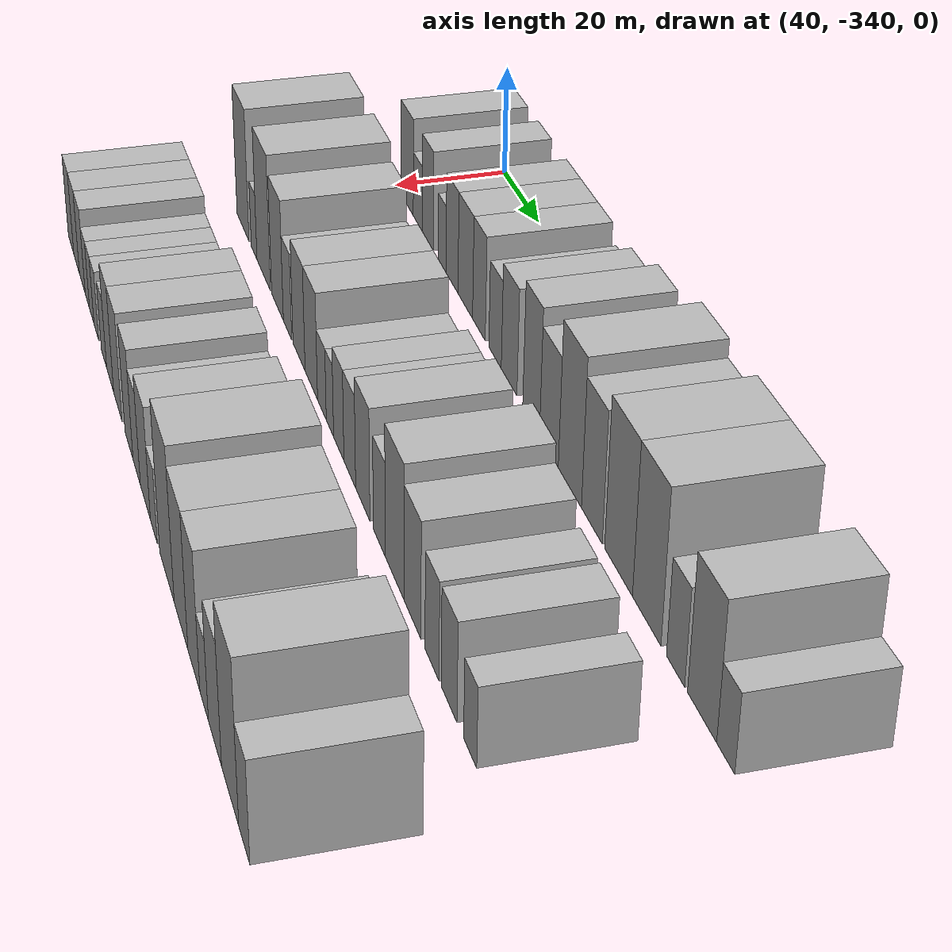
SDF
<sdf version="1.6">
 <world name="default">
  <model name="building_1">
   <static>1</static>
   <pose>50.0000 -331.8723 0 0.000000 0.000000 0.000000</pose>
   <link name="link">
    <pose>0 0 9.00 0 0 0</pose>
    <collision name="collision"><geometry><box><size>20.0000 8.2555 18.0000</size></box></geometry></collision>
    <visual name="visual">
     <cast_shadows>0</cast_shadows>
     <geometry><box><size>20.0000 8.2555 18.0000</size></box></geometry>
     <material>
      <script>
       <uri>model://HANNAS_wall/materials/scripts</uri>
       <uri>model://HANNAS_wall/materials/textures</uri>
       <name>vrc/HANNAS_wall</name>
      </script>
     </material>
    </visual>
   </link>
  </model>
  <model name="building_2">
   <static>1</static>
   <pose>50.0000 -324.7991 0 0.000000 0.000000 0.000000</pose>
   <link name="link">
    <pose>0 0 6.00 0 0 0</pose>
    <collision name="collision"><geometry><box><size>20.0000 5.8909 12.0000</size></box></geometry></collision>
    <visual name="visual">
     <cast_shadows>0</cast_shadows>
     <geometry><box><size>20.0000 5.8909 12.0000</size></box></geometry>
     <material>
      <script>
       <uri>model://HANNAS_wall/materials/scripts</uri>
       <uri>model://HANNAS_wall/materials/textures</uri>
       <name>vrc/HANNAS_wall</name>
      </script>
     </material>
    </visual>
   </link>
  </model>
  <model name="building_3">
   <static>1</static>
   <pose>50.0000 -318.1477 0 0.000000 0.000000 0.000000</pose>
   <link name="link">
    <pose>0 0 9.00 0 0 0</pose>
    <collision name="collision"><geometry><box><size>20.0000 7.4118 18.0000</size></box></geometry></collision>
    <visual name="visual">
     <cast_shadows>0</cast_shadows>
     <geometry><box><size>20.0000 7.4118 18.0000</size></box></geometry>
     <material>
      <script>
       <uri>model://HANNAS_wall/materials/scripts</uri>
       <uri>model://HANNAS_wall/materials/textures</uri>
       <name>vrc/HANNAS_wall</name>
      </script>
     </material>
    </visual>
   </link>
  </model>
  <model name="building_4">
   <static>1</static>
   <pose>50.0000 -308.9618 0 0.000000 0.000000 0.000000</pose>
   <link name="link">
    <pose>0 0 6.00 0 0 0</pose>
    <collision name="collision"><geometry><box><size>20.0000 4.9599 12.0000</size></box></geometry></collision>
    <visual name="visual">
     <cast_shadows>0</cast_shadows>
     <geometry><box><size>20.0000 4.9599 12.0000</size></box></geometry>
     <material>
      <script>
       <uri>model://HANNAS_wall/materials/scripts</uri>
       <uri>model://HANNAS_wall/materials/textures</uri>
       <name>vrc/HANNAS_wall</name>
      </script>
     </material>
    </visual>
   </link>
  </model>
  <model name="building_5">
   <static>1</static>
   <pose>50.0000 -302.8142 0 0.000000 0.000000 0.000000</pose>
   <link name="link">
    <pose>0 0 9.00 0 0 0</pose>
    <collision name="collision"><geometry><box><size>20.0000 7.3353 18.0000</size></box></geometry></collision>
    <visual name="visual">
     <cast_shadows>0</cast_shadows>
     <geometry><box><size>20.0000 7.3353 18.0000</size></box></geometry>
     <material>
      <script>
       <uri>model://HANNAS_wall/materials/scripts</uri>
       <uri>model://HANNAS_wall/materials/textures</uri>
       <name>vrc/HANNAS_wall</name>
      </script>
     </material>
    </visual>
   </link>
  </model>
  <model name="building_6">
   <static>1</static>
   <pose>50.0000 -294.8184 0 0.000000 0.000000 0.000000</pose>
   <link name="link">
    <pose>0 0 9.00 0 0 0</pose>
    <collision name="collision"><geometry><box><size>20.0000 8.6562 18.0000</size></box></geometry></collision>
    <visual name="visual">
     <cast_shadows>0</cast_shadows>
     <geometry><box><size>20.0000 8.6562 18.0000</size></box></geometry>
     <material>
      <script>
       <uri>model://HANNAS_wall/materials/scripts</uri>
       <uri>model://HANNAS_wall/materials/textures</uri>
       <name>vrc/HANNAS_wall</name>
      </script>
     </material>
    </visual>
   </link>
  </model>
  <model name="building_7">
   <static>1</static>
   <pose>50.0000 -286.8759 0 0.000000 0.000000 0.000000</pose>
   <link name="link">
    <pose>0 0 9.00 0 0 0</pose>
    <collision name="collision"><geometry><box><size>20.0000 7.2289 18.0000</size></box></geometry></collision>
    <visual name="visual">
     <cast_shadows>0</cast_shadows>
     <geometry><box><size>20.0000 7.2289 18.0000</size></box></geometry>
     <material>
      <script>
       <uri>model://HANNAS_wall/materials/scripts</uri>
       <uri>model://HANNAS_wall/materials/textures</uri>
       <name>vrc/HANNAS_wall</name>
      </script>
     </material>
    </visual>
   </link>
  </model>
  <model name="building_8">
   <static>1</static>
   <pose>50.0000 -277.8663 0 0.000000 0.000000 0.000000</pose>
   <link name="link">
    <pose>0 0 7.50 0 0 0</pose>
    <collision name="collision"><geometry><box><size>20.0000 6.7901 15.0000</size></box></geometry></collision>
    <visual name="visual">
     <cast_shadows>0</cast_shadows>
     <geometry><box><size>20.0000 6.7901 15.0000</size></box></geometry>
     <material>
      <script>
       <uri>model://HANNAS_wall/materials/scripts</uri>
       <uri>model://HANNAS_wall/materials/textures</uri>
       <name>vrc/HANNAS_wall</name>
      </script>
     </material>
    </visual>
   </link>
  </model>
  <model name="building_9">
   <static>1</static>
   <pose>50.0000 -270.3307 0 0.000000 0.000000 0.000000</pose>
   <link name="link">
    <pose>0 0 9.00 0 0 0</pose>
    <collision name="collision"><geometry><box><size>20.0000 8.2811 18.0000</size></box></geometry></collision>
    <visual name="visual">
     <cast_shadows>0</cast_shadows>
     <geometry><box><size>20.0000 8.2811 18.0000</size></box></geometry>
     <material>
      <script>
       <uri>model://HANNAS_wall/materials/scripts</uri>
       <uri>model://HANNAS_wall/materials/textures</uri>
       <name>vrc/HANNAS_wall</name>
      </script>
     </material>
    </visual>
   </link>
  </model>
  <model name="building_10">
   <static>1</static>
   <pose>50.0000 -258.9902 0 0.000000 0.000000 0.000000</pose>
   <link name="link">
    <pose>0 0 10.50 0 0 0</pose>
    <collision name="collision"><geometry><box><size>20.0000 8.4001 21.0000</size></box></geometry></collision>
    <visual name="visual">
     <cast_shadows>0</cast_shadows>
     <geometry><box><size>20.0000 8.4001 21.0000</size></box></geometry>
     <material>
      <script>
       <uri>model://HANNAS_wall/materials/scripts</uri>
       <uri>model://HANNAS_wall/materials/textures</uri>
       <name>vrc/HANNAS_wall</name>
      </script>
     </material>
    </visual>
   </link>
  </model>
  <model name="building_11">
   <static>1</static>
   <pose>50.0000 -250.2972 0 0.000000 0.000000 0.000000</pose>
   <link name="link">
    <pose>0 0 9.00 0 0 0</pose>
    <collision name="collision"><geometry><box><size>20.0000 8.9858 18.0000</size></box></geometry></collision>
    <visual name="visual">
     <cast_shadows>0</cast_shadows>
     <geometry><box><size>20.0000 8.9858 18.0000</size></box></geometry>
     <material>
      <script>
       <uri>model://HANNAS_wall/materials/scripts</uri>
       <uri>model://HANNAS_wall/materials/textures</uri>
       <name>vrc/HANNAS_wall</name>
      </script>
     </material>
    </visual>
   </link>
  </model>
  <model name="building_12">
   <static>1</static>
   <pose>50.0000 -240.5236 0 0.000000 0.000000 0.000000</pose>
   <link name="link">
    <pose>0 0 12.00 0 0 0</pose>
    <collision name="collision"><geometry><box><size>20.0000 10.5614 24.0000</size></box></geometry></collision>
    <visual name="visual">
     <cast_shadows>0</cast_shadows>
     <geometry><box><size>20.0000 10.5614 24.0000</size></box></geometry>
     <material>
      <script>
       <uri>model://HANNAS_wall/materials/scripts</uri>
       <uri>model://HANNAS_wall/materials/textures</uri>
       <name>vrc/HANNAS_wall</name>
      </script>
     </material>
    </visual>
   </link>
  </model>
  <model name="building_13">
   <static>1</static>
   <pose>50.0000 -230.7263 0 0.000000 0.000000 0.000000</pose>
   <link name="link">
    <pose>0 0 10.50 0 0 0</pose>
    <collision name="collision"><geometry><box><size>20.0000 9.0333 21.0000</size></box></geometry></collision>
    <visual name="visual">
     <cast_shadows>0</cast_shadows>
     <geometry><box><size>20.0000 9.0333 21.0000</size></box></geometry>
     <material>
      <script>
       <uri>model://HANNAS_wall/materials/scripts</uri>
       <uri>model://HANNAS_wall/materials/textures</uri>
       <name>vrc/HANNAS_wall</name>
      </script>
     </material>
    </visual>
   </link>
  </model>
  <model name="building_14">
   <static>1</static>
   <pose>50.0000 -219.5225 0 0.000000 0.000000 0.000000</pose>
   <link name="link">
    <pose>0 0 12.00 0 0 0</pose>
    <collision name="collision"><geometry><box><size>20.0000 11.3742 24.0000</size></box></geometry></collision>
    <visual name="visual">
     <cast_shadows>0</cast_shadows>
     <geometry><box><size>20.0000 11.3742 24.0000</size></box></geometry>
     <material>
      <script>
       <uri>model://HANNAS_wall/materials/scripts</uri>
       <uri>model://HANNAS_wall/materials/textures</uri>
       <name>vrc/HANNAS_wall</name>
      </script>
     </material>
    </visual>
   </link>
  </model>
  <model name="building_15">
   <static>1</static>
   <pose>50.0000 -208.3464 0 0.000000 0.000000 0.000000</pose>
   <link name="link">
    <pose>0 0 12.00 0 0 0</pose>
    <collision name="collision"><geometry><box><size>20.0000 10.9780 24.0000</size></box></geometry></collision>
    <visual name="visual">
     <cast_shadows>0</cast_shadows>
     <geometry><box><size>20.0000 10.9780 24.0000</size></box></geometry>
     <material>
      <script>
       <uri>model://HANNAS_wall/materials/scripts</uri>
       <uri>model://HANNAS_wall/materials/textures</uri>
       <name>vrc/HANNAS_wall</name>
      </script>
     </material>
    </visual>
   </link>
  </model>
  <model name="building_16">
   <static>1</static>
   <pose>50.0000 -197.5580 0 0.000000 0.000000 0.000000</pose>
   <link name="link">
    <pose>0 0 7.50 0 0 0</pose>
    <collision name="collision"><geometry><box><size>20.0000 6.5987 15.0000</size></box></geometry></collision>
    <visual name="visual">
     <cast_shadows>0</cast_shadows>
     <geometry><box><size>20.0000 6.5987 15.0000</size></box></geometry>
     <material>
      <script>
       <uri>model://HANNAS_wall/materials/scripts</uri>
       <uri>model://HANNAS_wall/materials/textures</uri>
       <name>vrc/HANNAS_wall</name>
      </script>
     </material>
    </visual>
   </link>
  </model>
  <model name="building_17">
   <static>1</static>
   <pose>50.0000 -188.2668 0 0.000000 0.000000 0.000000</pose>
   <link name="link">
    <pose>0 0 10.50 0 0 0</pose>
    <collision name="collision"><geometry><box><size>20.0000 9.9837 21.0000</size></box></geometry></collision>
    <visual name="visual">
     <cast_shadows>0</cast_shadows>
     <geometry><box><size>20.0000 9.9837 21.0000</size></box></geometry>
     <material>
      <script>
       <uri>model://HANNAS_wall/materials/scripts</uri>
       <uri>model://HANNAS_wall/materials/textures</uri>
       <name>vrc/HANNAS_wall</name>
      </script>
     </material>
    </visual>
   </link>
  </model>
  <model name="building_18">
   <static>1</static>
   <pose>50.0000 -180.3005 0 0.000000 0.000000 0.000000</pose>
   <link name="link">
    <pose>0 0 6.00 0 0 0</pose>
    <collision name="collision"><geometry><box><size>20.0000 5.9488 12.0000</size></box></geometry></collision>
    <visual name="visual">
     <cast_shadows>0</cast_shadows>
     <geometry><box><size>20.0000 5.9488 12.0000</size></box></geometry>
     <material>
      <script>
       <uri>model://HANNAS_wall/materials/scripts</uri>
       <uri>model://HANNAS_wall/materials/textures</uri>
       <name>vrc/HANNAS_wall</name>
      </script>
     </material>
    </visual>
   </link>
  </model>
  <model name="building_75">
   <static>1</static>
   <pose>79.0000 -330.7034 0 0.000000 0.000000 0.000000</pose>
   <link name="link">
    <pose>0 0 12.00 0 0 0</pose>
    <collision name="collision"><geometry><box><size>20.0000 10.5932 24.0000</size></box></geometry></collision>
    <visual name="visual">
     <cast_shadows>0</cast_shadows>
     <geometry><box><size>20.0000 10.5932 24.0000</size></box></geometry>
     <material>
      <script>
       <uri>model://HANNAS_wall/materials/scripts</uri>
       <uri>model://HANNAS_wall/materials/textures</uri>
       <name>vrc/HANNAS_wall</name>
      </script>
     </material>
    </visual>
   </link>
  </model>
  <model name="building_76">
   <static>1</static>
   <pose>79.0000 -320.9706 0 0.000000 0.000000 0.000000</pose>
   <link name="link">
    <pose>0 0 6.00 0 0 0</pose>
    <collision name="collision"><geometry><box><size>20.0000 4.8725 12.0000</size></box></geometry></collision>
    <visual name="visual">
     <cast_shadows>0</cast_shadows>
     <geometry><box><size>20.0000 4.8725 12.0000</size></box></geometry>
     <material>
      <script>
       <uri>model://HANNAS_wall/materials/scripts</uri>
       <uri>model://HANNAS_wall/materials/textures</uri>
       <name>vrc/HANNAS_wall</name>
      </script>
     </material>
    </visual>
   </link>
  </model>
  <model name="building_77">
   <static>1</static>
   <pose>79.0000 -312.9926 0 0.000000 0.000000 0.000000</pose>
   <link name="link">
    <pose>0 0 12.00 0 0 0</pose>
    <collision name="collision"><geometry><box><size>20.0000 11.0833 24.0000</size></box></geometry></collision>
    <visual name="visual">
     <cast_shadows>0</cast_shadows>
     <geometry><box><size>20.0000 11.0833 24.0000</size></box></geometry>
     <material>
      <script>
       <uri>model://HANNAS_wall/materials/scripts</uri>
       <uri>model://HANNAS_wall/materials/textures</uri>
       <name>vrc/HANNAS_wall</name>
      </script>
     </material>
    </visual>
   </link>
  </model>
  <model name="building_78">
   <static>1</static>
   <pose>79.0000 -301.8425 0 0.000000 0.000000 0.000000</pose>
   <link name="link">
    <pose>0 0 10.50 0 0 0</pose>
    <collision name="collision"><geometry><box><size>20.0000 9.2170 21.0000</size></box></geometry></collision>
    <visual name="visual">
     <cast_shadows>0</cast_shadows>
     <geometry><box><size>20.0000 9.2170 21.0000</size></box></geometry>
     <material>
      <script>
       <uri>model://HANNAS_wall/materials/scripts</uri>
       <uri>model://HANNAS_wall/materials/textures</uri>
       <name>vrc/HANNAS_wall</name>
      </script>
     </material>
    </visual>
   </link>
  </model>
  <model name="building_79">
   <static>1</static>
   <pose>79.0000 -294.0895 0 0.000000 0.000000 0.000000</pose>
   <link name="link">
    <pose>0 0 7.50 0 0 0</pose>
    <collision name="collision"><geometry><box><size>20.0000 6.2889 15.0000</size></box></geometry></collision>
    <visual name="visual">
     <cast_shadows>0</cast_shadows>
     <geometry><box><size>20.0000 6.2889 15.0000</size></box></geometry>
     <material>
      <script>
       <uri>model://HANNAS_wall/materials/scripts</uri>
       <uri>model://HANNAS_wall/materials/textures</uri>
       <name>vrc/HANNAS_wall</name>
      </script>
     </material>
    </visual>
   </link>
  </model>
  <model name="building_80">
   <static>1</static>
   <pose>79.0000 -285.5408 0 0.000000 0.000000 0.000000</pose>
   <link name="link">
    <pose>0 0 9.00 0 0 0</pose>
    <collision name="collision"><geometry><box><size>20.0000 8.8086 18.0000</size></box></geometry></collision>
    <visual name="visual">
     <cast_shadows>0</cast_shadows>
     <geometry><box><size>20.0000 8.8086 18.0000</size></box></geometry>
     <material>
      <script>
       <uri>model://HANNAS_wall/materials/scripts</uri>
       <uri>model://HANNAS_wall/materials/textures</uri>
       <name>vrc/HANNAS_wall</name>
      </script>
     </material>
    </visual>
   </link>
  </model>
  <model name="building_81">
   <static>1</static>
   <pose>79.0000 -276.7729 0 0.000000 0.000000 0.000000</pose>
   <link name="link">
    <pose>0 0 9.00 0 0 0</pose>
    <collision name="collision"><geometry><box><size>20.0000 8.7271 18.0000</size></box></geometry></collision>
    <visual name="visual">
     <cast_shadows>0</cast_shadows>
     <geometry><box><size>20.0000 8.7271 18.0000</size></box></geometry>
     <material>
      <script>
       <uri>model://HANNAS_wall/materials/scripts</uri>
       <uri>model://HANNAS_wall/materials/textures</uri>
       <name>vrc/HANNAS_wall</name>
      </script>
     </material>
    </visual>
   </link>
  </model>
  <model name="building_82">
   <static>1</static>
   <pose>79.0000 -269.4587 0 0.000000 0.000000 0.000000</pose>
   <link name="link">
    <pose>0 0 6.00 0 0 0</pose>
    <collision name="collision"><geometry><box><size>20.0000 5.9014 12.0000</size></box></geometry></collision>
    <visual name="visual">
     <cast_shadows>0</cast_shadows>
     <geometry><box><size>20.0000 5.9014 12.0000</size></box></geometry>
     <material>
      <script>
       <uri>model://HANNAS_wall/materials/scripts</uri>
       <uri>model://HANNAS_wall/materials/textures</uri>
       <name>vrc/HANNAS_wall</name>
      </script>
     </material>
    </visual>
   </link>
  </model>
  <model name="building_83">
   <static>1</static>
   <pose>79.0000 -264.1017 0 0.000000 0.000000 0.000000</pose>
   <link name="link">
    <pose>0 0 6.00 0 0 0</pose>
    <collision name="collision"><geometry><box><size>20.0000 4.8125 12.0000</size></box></geometry></collision>
    <visual name="visual">
     <cast_shadows>0</cast_shadows>
     <geometry><box><size>20.0000 4.8125 12.0000</size></box></geometry>
     <material>
      <script>
       <uri>model://HANNAS_wall/materials/scripts</uri>
       <uri>model://HANNAS_wall/materials/textures</uri>
       <name>vrc/HANNAS_wall</name>
      </script>
     </material>
    </visual>
   </link>
  </model>
  <model name="building_84">
   <static>1</static>
   <pose>79.0000 -258.3861 0 0.000000 0.000000 0.000000</pose>
   <link name="link">
    <pose>0 0 7.50 0 0 0</pose>
    <collision name="collision"><geometry><box><size>20.0000 6.6188 15.0000</size></box></geometry></collision>
    <visual name="visual">
     <cast_shadows>0</cast_shadows>
     <geometry><box><size>20.0000 6.6188 15.0000</size></box></geometry>
     <material>
      <script>
       <uri>model://HANNAS_wall/materials/scripts</uri>
       <uri>model://HANNAS_wall/materials/textures</uri>
       <name>vrc/HANNAS_wall</name>
      </script>
     </material>
    </visual>
   </link>
  </model>
  <model name="building_85">
   <static>1</static>
   <pose>79.0000 -251.4478 0 0.000000 0.000000 0.000000</pose>
   <link name="link">
    <pose>0 0 7.50 0 0 0</pose>
    <collision name="collision"><geometry><box><size>20.0000 7.2578 15.0000</size></box></geometry></collision>
    <visual name="visual">
     <cast_shadows>0</cast_shadows>
     <geometry><box><size>20.0000 7.2578 15.0000</size></box></geometry>
     <material>
      <script>
       <uri>model://HANNAS_wall/materials/scripts</uri>
       <uri>model://HANNAS_wall/materials/textures</uri>
       <name>vrc/HANNAS_wall</name>
      </script>
     </material>
    </visual>
   </link>
  </model>
  <model name="building_86">
   <static>1</static>
   <pose>79.0000 -243.5681 0 0.000000 0.000000 0.000000</pose>
   <link name="link">
    <pose>0 0 9.00 0 0 0</pose>
    <collision name="collision"><geometry><box><size>20.0000 8.5016 18.0000</size></box></geometry></collision>
    <visual name="visual">
     <cast_shadows>0</cast_shadows>
     <geometry><box><size>20.0000 8.5016 18.0000</size></box></geometry>
     <material>
      <script>
       <uri>model://HANNAS_wall/materials/scripts</uri>
       <uri>model://HANNAS_wall/materials/textures</uri>
       <name>vrc/HANNAS_wall</name>
      </script>
     </material>
    </visual>
   </link>
  </model>
  <model name="building_87">
   <static>1</static>
   <pose>79.0000 -233.9221 0 0.000000 0.000000 0.000000</pose>
   <link name="link">
    <pose>0 0 7.50 0 0 0</pose>
    <collision name="collision"><geometry><box><size>20.0000 6.7903 15.0000</size></box></geometry></collision>
    <visual name="visual">
     <cast_shadows>0</cast_shadows>
     <geometry><box><size>20.0000 6.7903 15.0000</size></box></geometry>
     <material>
      <script>
       <uri>model://HANNAS_wall/materials/scripts</uri>
       <uri>model://HANNAS_wall/materials/textures</uri>
       <name>vrc/HANNAS_wall</name>
      </script>
     </material>
    </visual>
   </link>
  </model>
  <model name="building_88">
   <static>1</static>
   <pose>79.0000 -225.4877 0 0.000000 0.000000 0.000000</pose>
   <link name="link">
    <pose>0 0 10.50 0 0 0</pose>
    <collision name="collision"><geometry><box><size>20.0000 10.0786 21.0000</size></box></geometry></collision>
    <visual name="visual">
     <cast_shadows>0</cast_shadows>
     <geometry><box><size>20.0000 10.0786 21.0000</size></box></geometry>
     <material>
      <script>
       <uri>model://HANNAS_wall/materials/scripts</uri>
       <uri>model://HANNAS_wall/materials/textures</uri>
       <name>vrc/HANNAS_wall</name>
      </script>
     </material>
    </visual>
   </link>
  </model>
  <model name="building_89">
   <static>1</static>
   <pose>79.0000 -216.1134 0 0.000000 0.000000 0.000000</pose>
   <link name="link">
    <pose>0 0 9.00 0 0 0</pose>
    <collision name="collision"><geometry><box><size>20.0000 8.6700 18.0000</size></box></geometry></collision>
    <visual name="visual">
     <cast_shadows>0</cast_shadows>
     <geometry><box><size>20.0000 8.6700 18.0000</size></box></geometry>
     <material>
      <script>
       <uri>model://HANNAS_wall/materials/scripts</uri>
       <uri>model://HANNAS_wall/materials/textures</uri>
       <name>vrc/HANNAS_wall</name>
      </script>
     </material>
    </visual>
   </link>
  </model>
  <model name="building_90">
   <static>1</static>
   <pose>79.0000 -206.3821 0 0.000000 0.000000 0.000000</pose>
   <link name="link">
    <pose>0 0 7.50 0 0 0</pose>
    <collision name="collision"><geometry><box><size>20.0000 6.7925 15.0000</size></box></geometry></collision>
    <visual name="visual">
     <cast_shadows>0</cast_shadows>
     <geometry><box><size>20.0000 6.7925 15.0000</size></box></geometry>
     <material>
      <script>
       <uri>model://HANNAS_wall/materials/scripts</uri>
       <uri>model://HANNAS_wall/materials/textures</uri>
       <name>vrc/HANNAS_wall</name>
      </script>
     </material>
    </visual>
   </link>
  </model>
  <model name="building_91">
   <static>1</static>
   <pose>79.0000 -198.3177 0 0.000000 0.000000 0.000000</pose>
   <link name="link">
    <pose>0 0 7.50 0 0 0</pose>
    <collision name="collision"><geometry><box><size>20.0000 7.3364 15.0000</size></box></geometry></collision>
    <visual name="visual">
     <cast_shadows>0</cast_shadows>
     <geometry><box><size>20.0000 7.3364 15.0000</size></box></geometry>
     <material>
      <script>
       <uri>model://HANNAS_wall/materials/scripts</uri>
       <uri>model://HANNAS_wall/materials/textures</uri>
       <name>vrc/HANNAS_wall</name>
      </script>
     </material>
    </visual>
   </link>
  </model>
  <model name="building_92">
   <static>1</static>
   <pose>79.0000 -188.7848 0 0.000000 0.000000 0.000000</pose>
   <link name="link">
    <pose>0 0 6.00 0 0 0</pose>
    <collision name="collision"><geometry><box><size>20.0000 5.7293 12.0000</size></box></geometry></collision>
    <visual name="visual">
     <cast_shadows>0</cast_shadows>
     <geometry><box><size>20.0000 5.7293 12.0000</size></box></geometry>
     <material>
      <script>
       <uri>model://HANNAS_wall/materials/scripts</uri>
       <uri>model://HANNAS_wall/materials/textures</uri>
       <name>vrc/HANNAS_wall</name>
      </script>
     </material>
    </visual>
   </link>
  </model>
  <model name="building_151">
   <static>1</static>
   <pose>108.0000 -331.5030 0 0.000000 0.000000 0.000000</pose>
   <link name="link">
    <pose>0 0 7.50 0 0 0</pose>
    <collision name="collision"><geometry><box><size>20.0000 6.9940 15.0000</size></box></geometry></collision>
    <visual name="visual">
     <cast_shadows>0</cast_shadows>
     <geometry><box><size>20.0000 6.9940 15.0000</size></box></geometry>
     <material>
      <script>
       <uri>model://HANNAS_wall/materials/scripts</uri>
       <uri>model://HANNAS_wall/materials/textures</uri>
       <name>vrc/HANNAS_wall</name>
      </script>
     </material>
    </visual>
   </link>
  </model>
  <model name="building_152">
   <static>1</static>
   <pose>108.0000 -324.4294 0 0.000000 0.000000 0.000000</pose>
   <link name="link">
    <pose>0 0 7.50 0 0 0</pose>
    <collision name="collision"><geometry><box><size>20.0000 7.1532 15.0000</size></box></geometry></collision>
    <visual name="visual">
     <cast_shadows>0</cast_shadows>
     <geometry><box><size>20.0000 7.1532 15.0000</size></box></geometry>
     <material>
      <script>
       <uri>model://HANNAS_wall/materials/scripts</uri>
       <uri>model://HANNAS_wall/materials/textures</uri>
       <name>vrc/HANNAS_wall</name>
      </script>
     </material>
    </visual>
   </link>
  </model>
  <model name="building_153">
   <static>1</static>
   <pose>108.0000 -317.3427 0 0.000000 0.000000 0.000000</pose>
   <link name="link">
    <pose>0 0 7.50 0 0 0</pose>
    <collision name="collision"><geometry><box><size>20.0000 7.0202 15.0000</size></box></geometry></collision>
    <visual name="visual">
     <cast_shadows>0</cast_shadows>
     <geometry><box><size>20.0000 7.0202 15.0000</size></box></geometry>
     <material>
      <script>
       <uri>model://HANNAS_wall/materials/scripts</uri>
       <uri>model://HANNAS_wall/materials/textures</uri>
       <name>vrc/HANNAS_wall</name>
      </script>
     </material>
    </visual>
   </link>
  </model>
  <model name="building_154">
   <static>1</static>
   <pose>108.0000 -311.2737 0 0.000000 0.000000 0.000000</pose>
   <link name="link">
    <pose>0 0 6.00 0 0 0</pose>
    <collision name="collision"><geometry><box><size>20.0000 5.1178 12.0000</size></box></geometry></collision>
    <visual name="visual">
     <cast_shadows>0</cast_shadows>
     <geometry><box><size>20.0000 5.1178 12.0000</size></box></geometry>
     <material>
      <script>
       <uri>model://HANNAS_wall/materials/scripts</uri>
       <uri>model://HANNAS_wall/materials/textures</uri>
       <name>vrc/HANNAS_wall</name>
      </script>
     </material>
    </visual>
   </link>
  </model>
  <model name="building_155">
   <static>1</static>
   <pose>108.0000 -306.1029 0 0.000000 0.000000 0.000000</pose>
   <link name="link">
    <pose>0 0 6.00 0 0 0</pose>
    <collision name="collision"><geometry><box><size>20.0000 5.2237 12.0000</size></box></geometry></collision>
    <visual name="visual">
     <cast_shadows>0</cast_shadows>
     <geometry><box><size>20.0000 5.2237 12.0000</size></box></geometry>
     <material>
      <script>
       <uri>model://HANNAS_wall/materials/scripts</uri>
       <uri>model://HANNAS_wall/materials/textures</uri>
       <name>vrc/HANNAS_wall</name>
      </script>
     </material>
    </visual>
   </link>
  </model>
  <model name="building_156">
   <static>1</static>
   <pose>108.0000 -300.8334 0 0.000000 0.000000 0.000000</pose>
   <link name="link">
    <pose>0 0 6.00 0 0 0</pose>
    <collision name="collision"><geometry><box><size>20.0000 5.3154 12.0000</size></box></geometry></collision>
    <visual name="visual">
     <cast_shadows>0</cast_shadows>
     <geometry><box><size>20.0000 5.3154 12.0000</size></box></geometry>
     <material>
      <script>
       <uri>model://HANNAS_wall/materials/scripts</uri>
       <uri>model://HANNAS_wall/materials/textures</uri>
       <name>vrc/HANNAS_wall</name>
      </script>
     </material>
    </visual>
   </link>
  </model>
  <model name="building_157">
   <static>1</static>
   <pose>108.0000 -292.3204 0 0.000000 0.000000 0.000000</pose>
   <link name="link">
    <pose>0 0 6.00 0 0 0</pose>
    <collision name="collision"><geometry><box><size>20.0000 5.7105 12.0000</size></box></geometry></collision>
    <visual name="visual">
     <cast_shadows>0</cast_shadows>
     <geometry><box><size>20.0000 5.7105 12.0000</size></box></geometry>
     <material>
      <script>
       <uri>model://HANNAS_wall/materials/scripts</uri>
       <uri>model://HANNAS_wall/materials/textures</uri>
       <name>vrc/HANNAS_wall</name>
      </script>
     </material>
    </visual>
   </link>
  </model>
  <model name="building_158">
   <static>1</static>
   <pose>108.0000 -285.7553 0 0.000000 0.000000 0.000000</pose>
   <link name="link">
    <pose>0 0 9.00 0 0 0</pose>
    <collision name="collision"><geometry><box><size>20.0000 7.4198 18.0000</size></box></geometry></collision>
    <visual name="visual">
     <cast_shadows>0</cast_shadows>
     <geometry><box><size>20.0000 7.4198 18.0000</size></box></geometry>
     <material>
      <script>
       <uri>model://HANNAS_wall/materials/scripts</uri>
       <uri>model://HANNAS_wall/materials/textures</uri>
       <name>vrc/HANNAS_wall</name>
      </script>
     </material>
    </visual>
   </link>
  </model>
  <model name="building_159">
   <static>1</static>
   <pose>108.0000 -277.8091 0 0.000000 0.000000 0.000000</pose>
   <link name="link">
    <pose>0 0 9.00 0 0 0</pose>
    <collision name="collision"><geometry><box><size>20.0000 8.4726 18.0000</size></box></geometry></collision>
    <visual name="visual">
     <cast_shadows>0</cast_shadows>
     <geometry><box><size>20.0000 8.4726 18.0000</size></box></geometry>
     <material>
      <script>
       <uri>model://HANNAS_wall/materials/scripts</uri>
       <uri>model://HANNAS_wall/materials/textures</uri>
       <name>vrc/HANNAS_wall</name>
      </script>
     </material>
    </visual>
   </link>
  </model>
  <model name="building_160">
   <static>1</static>
   <pose>108.0000 -266.7182 0 0.000000 0.000000 0.000000</pose>
   <link name="link">
    <pose>0 0 9.00 0 0 0</pose>
    <collision name="collision"><geometry><box><size>20.0000 7.7092 18.0000</size></box></geometry></collision>
    <visual name="visual">
     <cast_shadows>0</cast_shadows>
     <geometry><box><size>20.0000 7.7092 18.0000</size></box></geometry>
     <material>
      <script>
       <uri>model://HANNAS_wall/materials/scripts</uri>
       <uri>model://HANNAS_wall/materials/textures</uri>
       <name>vrc/HANNAS_wall</name>
      </script>
     </material>
    </visual>
   </link>
  </model>
  <model name="building_161">
   <static>1</static>
   <pose>108.0000 -259.4225 0 0.000000 0.000000 0.000000</pose>
   <link name="link">
    <pose>0 0 7.50 0 0 0</pose>
    <collision name="collision"><geometry><box><size>20.0000 6.8821 15.0000</size></box></geometry></collision>
    <visual name="visual">
     <cast_shadows>0</cast_shadows>
     <geometry><box><size>20.0000 6.8821 15.0000</size></box></geometry>
     <material>
      <script>
       <uri>model://HANNAS_wall/materials/scripts</uri>
       <uri>model://HANNAS_wall/materials/textures</uri>
       <name>vrc/HANNAS_wall</name>
      </script>
     </material>
    </visual>
   </link>
  </model>
  <model name="building_162">
   <static>1</static>
   <pose>108.0000 -251.5320 0 0.000000 0.000000 0.000000</pose>
   <link name="link">
    <pose>0 0 9.00 0 0 0</pose>
    <collision name="collision"><geometry><box><size>20.0000 8.8990 18.0000</size></box></geometry></collision>
    <visual name="visual">
     <cast_shadows>0</cast_shadows>
     <geometry><box><size>20.0000 8.8990 18.0000</size></box></geometry>
     <material>
      <script>
       <uri>model://HANNAS_wall/materials/scripts</uri>
       <uri>model://HANNAS_wall/materials/textures</uri>
       <name>vrc/HANNAS_wall</name>
      </script>
     </material>
    </visual>
   </link>
  </model>
  <model name="building_163">
   <static>1</static>
   <pose>108.0000 -244.1172 0 0.000000 0.000000 0.000000</pose>
   <link name="link">
    <pose>0 0 6.00 0 0 0</pose>
    <collision name="collision"><geometry><box><size>20.0000 5.9307 12.0000</size></box></geometry></collision>
    <visual name="visual">
     <cast_shadows>0</cast_shadows>
     <geometry><box><size>20.0000 5.9307 12.0000</size></box></geometry>
     <material>
      <script>
       <uri>model://HANNAS_wall/materials/scripts</uri>
       <uri>model://HANNAS_wall/materials/textures</uri>
       <name>vrc/HANNAS_wall</name>
      </script>
     </material>
    </visual>
   </link>
  </model>
  <model name="building_164">
   <static>1</static>
   <pose>108.0000 -233.2729 0 0.000000 0.000000 0.000000</pose>
   <link name="link">
    <pose>0 0 12.00 0 0 0</pose>
    <collision name="collision"><geometry><box><size>20.0000 11.7579 24.0000</size></box></geometry></collision>
    <visual name="visual">
     <cast_shadows>0</cast_shadows>
     <geometry><box><size>20.0000 11.7579 24.0000</size></box></geometry>
     <material>
      <script>
       <uri>model://HANNAS_wall/materials/scripts</uri>
       <uri>model://HANNAS_wall/materials/textures</uri>
       <name>vrc/HANNAS_wall</name>
      </script>
     </material>
    </visual>
   </link>
  </model>
  <model name="building_165">
   <static>1</static>
   <pose>108.0000 -222.1537 0 0.000000 0.000000 0.000000</pose>
   <link name="link">
    <pose>0 0 10.50 0 0 0</pose>
    <collision name="collision"><geometry><box><size>20.0000 10.4803 21.0000</size></box></geometry></collision>
    <visual name="visual">
     <cast_shadows>0</cast_shadows>
     <geometry><box><size>20.0000 10.4803 21.0000</size></box></geometry>
     <material>
      <script>
       <uri>model://HANNAS_wall/materials/scripts</uri>
       <uri>model://HANNAS_wall/materials/textures</uri>
       <name>vrc/HANNAS_wall</name>
      </script>
     </material>
    </visual>
   </link>
  </model>
  <model name="building_166">
   <static>1</static>
   <pose>108.0000 -212.5856 0 0.000000 0.000000 0.000000</pose>
   <link name="link">
    <pose>0 0 10.50 0 0 0</pose>
    <collision name="collision"><geometry><box><size>20.0000 8.6560 21.0000</size></box></geometry></collision>
    <visual name="visual">
     <cast_shadows>0</cast_shadows>
     <geometry><box><size>20.0000 8.6560 21.0000</size></box></geometry>
     <material>
      <script>
       <uri>model://HANNAS_wall/materials/scripts</uri>
       <uri>model://HANNAS_wall/materials/textures</uri>
       <name>vrc/HANNAS_wall</name>
      </script>
     </material>
    </visual>
   </link>
  </model>
  <model name="building_167">
   <static>1</static>
   <pose>108.0000 -205.3236 0 0.000000 0.000000 0.000000</pose>
   <link name="link">
    <pose>0 0 6.00 0 0 0</pose>
    <collision name="collision"><geometry><box><size>20.0000 5.8680 12.0000</size></box></geometry></collision>
    <visual name="visual">
     <cast_shadows>0</cast_shadows>
     <geometry><box><size>20.0000 5.8680 12.0000</size></box></geometry>
     <material>
      <script>
       <uri>model://HANNAS_wall/materials/scripts</uri>
       <uri>model://HANNAS_wall/materials/textures</uri>
       <name>vrc/HANNAS_wall</name>
      </script>
     </material>
    </visual>
   </link>
  </model>
  <model name="building_168">
   <static>1</static>
   <pose>108.0000 -198.0302 0 0.000000 0.000000 0.000000</pose>
   <link name="link">
    <pose>0 0 9.00 0 0 0</pose>
    <collision name="collision"><geometry><box><size>20.0000 8.7187 18.0000</size></box></geometry></collision>
    <visual name="visual">
     <cast_shadows>0</cast_shadows>
     <geometry><box><size>20.0000 8.7187 18.0000</size></box></geometry>
     <material>
      <script>
       <uri>model://HANNAS_wall/materials/scripts</uri>
       <uri>model://HANNAS_wall/materials/textures</uri>
       <name>vrc/HANNAS_wall</name>
      </script>
     </material>
    </visual>
   </link>
  </model>
  <model name="building_169">
   <static>1</static>
   <pose>108.0000 -188.3033 0 0.000000 0.000000 0.000000</pose>
   <link name="link">
    <pose>0 0 12.00 0 0 0</pose>
    <collision name="collision"><geometry><box><size>20.0000 10.7352 24.0000</size></box></geometry></collision>
    <visual name="visual">
     <cast_shadows>0</cast_shadows>
     <geometry><box><size>20.0000 10.7352 24.0000</size></box></geometry>
     <material>
      <script>
       <uri>model://HANNAS_wall/materials/scripts</uri>
       <uri>model://HANNAS_wall/materials/textures</uri>
       <name>vrc/HANNAS_wall</name>
      </script>
     </material>
    </visual>
   </link>
  </model>
  <model name="building_170">
   <static>1</static>
   <pose>108.0000 -179.6413 0 0.000000 0.000000 0.000000</pose>
   <link name="link">
    <pose>0 0 7.50 0 0 0</pose>
    <collision name="collision"><geometry><box><size>20.0000 6.5888 15.0000</size></box></geometry></collision>
    <visual name="visual">
     <cast_shadows>0</cast_shadows>
     <geometry><box><size>20.0000 6.5888 15.0000</size></box></geometry>
     <material>
      <script>
       <uri>model://HANNAS_wall/materials/scripts</uri>
       <uri>model://HANNAS_wall/materials/textures</uri>
       <name>vrc/HANNAS_wall</name>
      </script>
     </material>
    </visual>
   </link>
  </model>
 </world>
</sdf>
